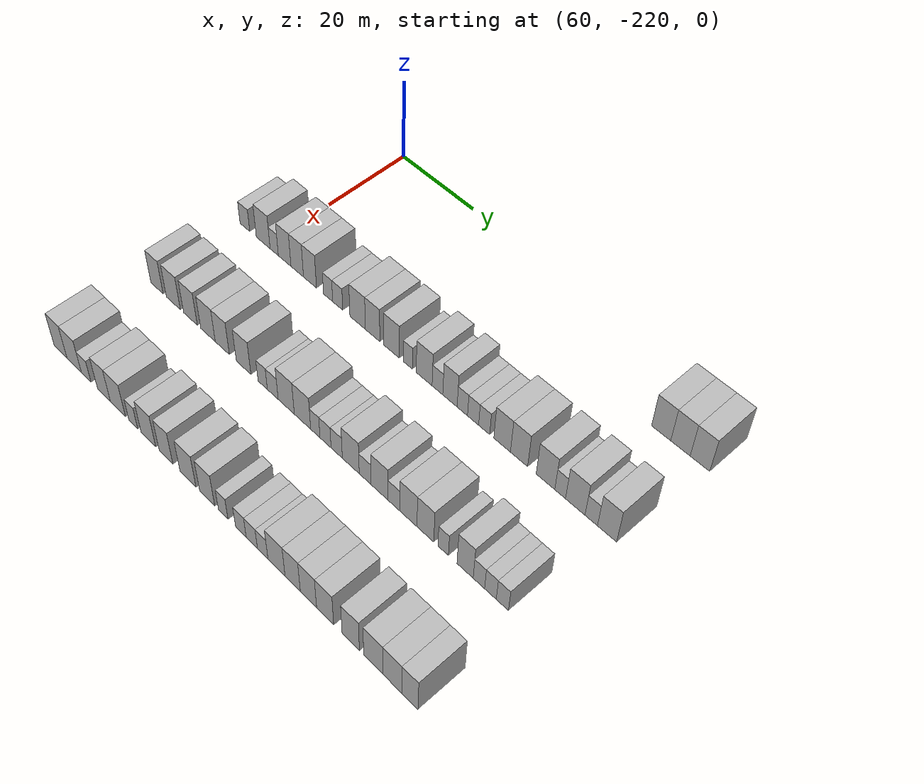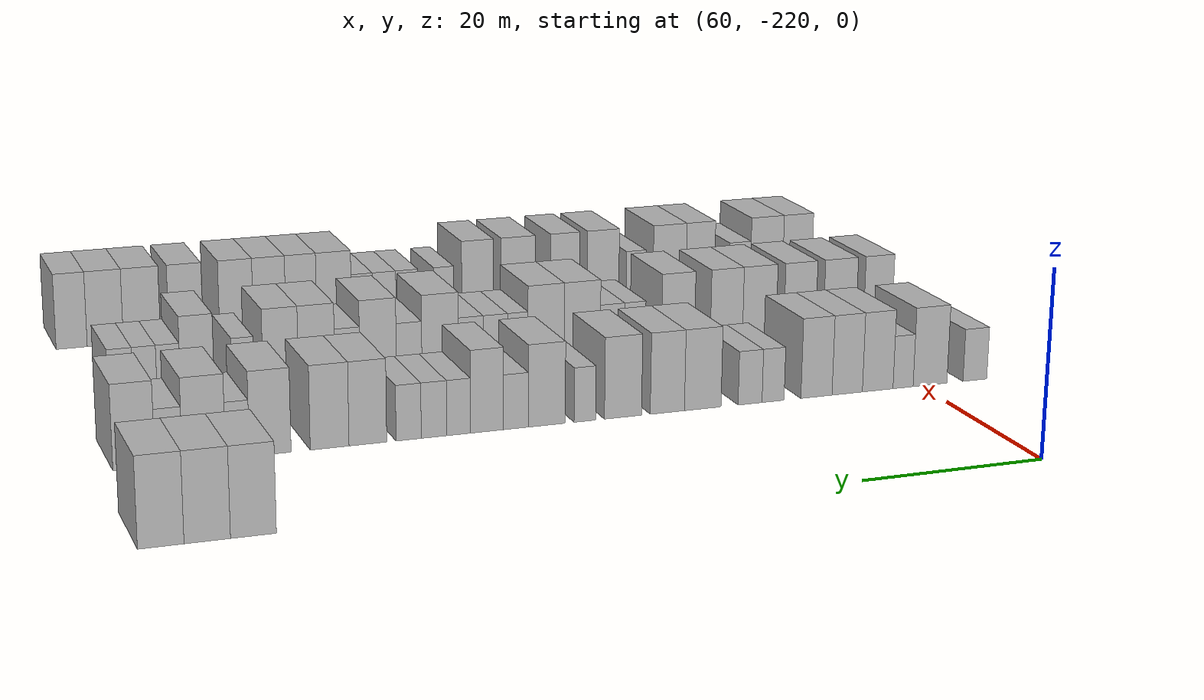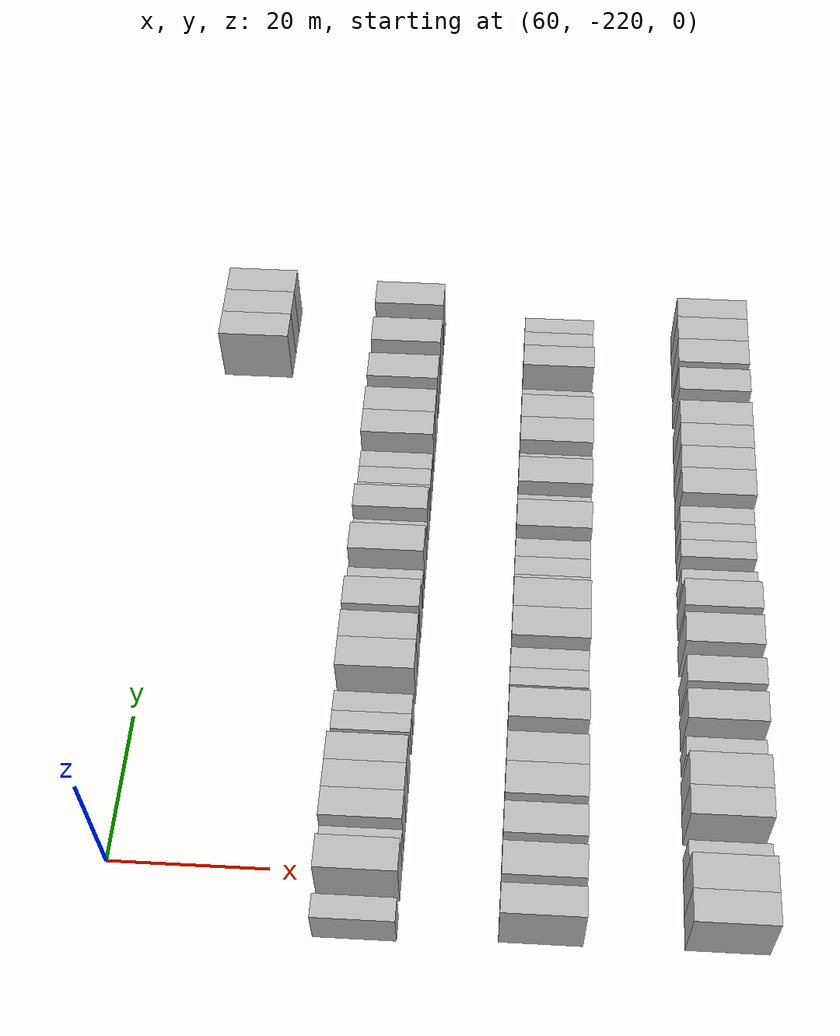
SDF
<sdf version="1.6">
 <world name="default">
  <model name="building_429">
   <static>1</static>
   <pose>69.0000 -139.7375 0 0.000000 0.000000 0.000000</pose>
   <link name="link">
    <pose>0 0 4.50 0 0 0</pose>
    <collision name="collision"><geometry><box><size>10.0000 4.3374 9.0000</size></box></geometry></collision>
    <visual name="visual">
     <cast_shadows>0</cast_shadows>
     <geometry><box><size>10.0000 4.3374 9.0000</size></box></geometry>
     <material>
      <script>
       <uri>model://HANNAS_wall/materials/scripts</uri>
       <uri>model://HANNAS_wall/materials/textures</uri>
       <name>vrc/HANNAS_wall</name>
      </script>
     </material>
    </visual>
   </link>
  </model>
  <model name="building_430">
   <static>1</static>
   <pose>69.0000 -135.4004 0 0.000000 0.000000 0.000000</pose>
   <link name="link">
    <pose>0 0 4.50 0 0 0</pose>
    <collision name="collision"><geometry><box><size>10.0000 4.3367 9.0000</size></box></geometry></collision>
    <visual name="visual">
     <cast_shadows>0</cast_shadows>
     <geometry><box><size>10.0000 4.3367 9.0000</size></box></geometry>
     <material>
      <script>
       <uri>model://HANNAS_wall/materials/scripts</uri>
       <uri>model://HANNAS_wall/materials/textures</uri>
       <name>vrc/HANNAS_wall</name>
      </script>
     </material>
    </visual>
   </link>
  </model>
  <model name="building_431">
   <static>1</static>
   <pose>69.0000 -131.0798 0 0.000000 0.000000 0.000000</pose>
   <link name="link">
    <pose>0 0 4.50 0 0 0</pose>
    <collision name="collision"><geometry><box><size>10.0000 4.3046 9.0000</size></box></geometry></collision>
    <visual name="visual">
     <cast_shadows>0</cast_shadows>
     <geometry><box><size>10.0000 4.3046 9.0000</size></box></geometry>
     <material>
      <script>
       <uri>model://HANNAS_wall/materials/scripts</uri>
       <uri>model://HANNAS_wall/materials/textures</uri>
       <name>vrc/HANNAS_wall</name>
      </script>
     </material>
    </visual>
   </link>
  </model>
  <model name="building_600">
   <static>1</static>
   <pose>91.0000 -226.6868 0 0.000000 0.000000 0.000000</pose>
   <link name="link">
    <pose>0 0 3.00 0 0 0</pose>
    <collision name="collision"><geometry><box><size>10.0000 2.9673 6.0000</size></box></geometry></collision>
    <visual name="visual">
     <cast_shadows>0</cast_shadows>
     <geometry><box><size>10.0000 2.9673 6.0000</size></box></geometry>
     <material>
      <script>
       <uri>model://HANNAS_wall/materials/scripts</uri>
       <uri>model://HANNAS_wall/materials/textures</uri>
       <name>vrc/HANNAS_wall</name>
      </script>
     </material>
    </visual>
   </link>
  </model>
  <model name="building_601">
   <static>1</static>
   <pose>91.0000 -221.1215 0 0.000000 0.000000 0.000000</pose>
   <link name="link">
    <pose>0 0 4.50 0 0 0</pose>
    <collision name="collision"><geometry><box><size>10.0000 4.1633 9.0000</size></box></geometry></collision>
    <visual name="visual">
     <cast_shadows>0</cast_shadows>
     <geometry><box><size>10.0000 4.1633 9.0000</size></box></geometry>
     <material>
      <script>
       <uri>model://HANNAS_wall/materials/scripts</uri>
       <uri>model://HANNAS_wall/materials/textures</uri>
       <name>vrc/HANNAS_wall</name>
      </script>
     </material>
    </visual>
   </link>
  </model>
  <model name="building_602">
   <static>1</static>
   <pose>91.0000 -217.8086 0 0.000000 0.000000 0.000000</pose>
   <link name="link">
    <pose>0 0 3.00 0 0 0</pose>
    <collision name="collision"><geometry><box><size>10.0000 2.4625 6.0000</size></box></geometry></collision>
    <visual name="visual">
     <cast_shadows>0</cast_shadows>
     <geometry><box><size>10.0000 2.4625 6.0000</size></box></geometry>
     <material>
      <script>
       <uri>model://HANNAS_wall/materials/scripts</uri>
       <uri>model://HANNAS_wall/materials/textures</uri>
       <name>vrc/HANNAS_wall</name>
      </script>
     </material>
    </visual>
   </link>
  </model>
  <model name="building_603">
   <static>1</static>
   <pose>91.0000 -214.7157 0 0.000000 0.000000 0.000000</pose>
   <link name="link">
    <pose>0 0 4.50 0 0 0</pose>
    <collision name="collision"><geometry><box><size>10.0000 3.7232 9.0000</size></box></geometry></collision>
    <visual name="visual">
     <cast_shadows>0</cast_shadows>
     <geometry><box><size>10.0000 3.7232 9.0000</size></box></geometry>
     <material>
      <script>
       <uri>model://HANNAS_wall/materials/scripts</uri>
       <uri>model://HANNAS_wall/materials/textures</uri>
       <name>vrc/HANNAS_wall</name>
      </script>
     </material>
    </visual>
   </link>
  </model>
  <model name="building_604">
   <static>1</static>
   <pose>91.0000 -211.0231 0 0.000000 0.000000 0.000000</pose>
   <link name="link">
    <pose>0 0 4.50 0 0 0</pose>
    <collision name="collision"><geometry><box><size>10.0000 3.6621 9.0000</size></box></geometry></collision>
    <visual name="visual">
     <cast_shadows>0</cast_shadows>
     <geometry><box><size>10.0000 3.6621 9.0000</size></box></geometry>
     <material>
      <script>
       <uri>model://HANNAS_wall/materials/scripts</uri>
       <uri>model://HANNAS_wall/materials/textures</uri>
       <name>vrc/HANNAS_wall</name>
      </script>
     </material>
    </visual>
   </link>
  </model>
  <model name="building_605">
   <static>1</static>
   <pose>91.0000 -207.3272 0 0.000000 0.000000 0.000000</pose>
   <link name="link">
    <pose>0 0 4.50 0 0 0</pose>
    <collision name="collision"><geometry><box><size>10.0000 3.7296 9.0000</size></box></geometry></collision>
    <visual name="visual">
     <cast_shadows>0</cast_shadows>
     <geometry><box><size>10.0000 3.7296 9.0000</size></box></geometry>
     <material>
      <script>
       <uri>model://HANNAS_wall/materials/scripts</uri>
       <uri>model://HANNAS_wall/materials/textures</uri>
       <name>vrc/HANNAS_wall</name>
      </script>
     </material>
    </visual>
   </link>
  </model>
  <model name="building_606">
   <static>1</static>
   <pose>91.0000 -202.1600 0 0.000000 0.000000 0.000000</pose>
   <link name="link">
    <pose>0 0 3.00 0 0 0</pose>
    <collision name="collision"><geometry><box><size>10.0000 2.6048 6.0000</size></box></geometry></collision>
    <visual name="visual">
     <cast_shadows>0</cast_shadows>
     <geometry><box><size>10.0000 2.6048 6.0000</size></box></geometry>
     <material>
      <script>
       <uri>model://HANNAS_wall/materials/scripts</uri>
       <uri>model://HANNAS_wall/materials/textures</uri>
       <name>vrc/HANNAS_wall</name>
      </script>
     </material>
    </visual>
   </link>
  </model>
  <model name="building_607">
   <static>1</static>
   <pose>91.0000 -199.4535 0 0.000000 0.000000 0.000000</pose>
   <link name="link">
    <pose>0 0 3.00 0 0 0</pose>
    <collision name="collision"><geometry><box><size>10.0000 2.8083 6.0000</size></box></geometry></collision>
    <visual name="visual">
     <cast_shadows>0</cast_shadows>
     <geometry><box><size>10.0000 2.8083 6.0000</size></box></geometry>
     <material>
      <script>
       <uri>model://HANNAS_wall/materials/scripts</uri>
       <uri>model://HANNAS_wall/materials/textures</uri>
       <name>vrc/HANNAS_wall</name>
      </script>
     </material>
    </visual>
   </link>
  </model>
  <model name="building_608">
   <static>1</static>
   <pose>91.0000 -193.9268 0 0.000000 0.000000 0.000000</pose>
   <link name="link">
    <pose>0 0 4.50 0 0 0</pose>
    <collision name="collision"><geometry><box><size>10.0000 4.2449 9.0000</size></box></geometry></collision>
    <visual name="visual">
     <cast_shadows>0</cast_shadows>
     <geometry><box><size>10.0000 4.2449 9.0000</size></box></geometry>
     <material>
      <script>
       <uri>model://HANNAS_wall/materials/scripts</uri>
       <uri>model://HANNAS_wall/materials/textures</uri>
       <name>vrc/HANNAS_wall</name>
      </script>
     </material>
    </visual>
   </link>
  </model>
  <model name="building_609">
   <static>1</static>
   <pose>91.0000 -189.8392 0 0.000000 0.000000 0.000000</pose>
   <link name="link">
    <pose>0 0 4.50 0 0 0</pose>
    <collision name="collision"><geometry><box><size>10.0000 3.9305 9.0000</size></box></geometry></collision>
    <visual name="visual">
     <cast_shadows>0</cast_shadows>
     <geometry><box><size>10.0000 3.9305 9.0000</size></box></geometry>
     <material>
      <script>
       <uri>model://HANNAS_wall/materials/scripts</uri>
       <uri>model://HANNAS_wall/materials/textures</uri>
       <name>vrc/HANNAS_wall</name>
      </script>
     </material>
    </visual>
   </link>
  </model>
  <model name="building_610">
   <static>1</static>
   <pose>91.0000 -184.7687 0 0.000000 0.000000 0.000000</pose>
   <link name="link">
    <pose>0 0 4.50 0 0 0</pose>
    <collision name="collision"><geometry><box><size>10.0000 4.2104 9.0000</size></box></geometry></collision>
    <visual name="visual">
     <cast_shadows>0</cast_shadows>
     <geometry><box><size>10.0000 4.2104 9.0000</size></box></geometry>
     <material>
      <script>
       <uri>model://HANNAS_wall/materials/scripts</uri>
       <uri>model://HANNAS_wall/materials/textures</uri>
       <name>vrc/HANNAS_wall</name>
      </script>
     </material>
    </visual>
   </link>
  </model>
  <model name="building_611">
   <static>1</static>
   <pose>91.0000 -180.4513 0 0.000000 0.000000 0.000000</pose>
   <link name="link">
    <pose>0 0 3.00 0 0 0</pose>
    <collision name="collision"><geometry><box><size>10.0000 2.4243 6.0000</size></box></geometry></collision>
    <visual name="visual">
     <cast_shadows>0</cast_shadows>
     <geometry><box><size>10.0000 2.4243 6.0000</size></box></geometry>
     <material>
      <script>
       <uri>model://HANNAS_wall/materials/scripts</uri>
       <uri>model://HANNAS_wall/materials/textures</uri>
       <name>vrc/HANNAS_wall</name>
      </script>
     </material>
    </visual>
   </link>
  </model>
  <model name="building_612">
   <static>1</static>
   <pose>91.0000 -176.1852 0 0.000000 0.000000 0.000000</pose>
   <link name="link">
    <pose>0 0 4.50 0 0 0</pose>
    <collision name="collision"><geometry><box><size>10.0000 4.1080 9.0000</size></box></geometry></collision>
    <visual name="visual">
     <cast_shadows>0</cast_shadows>
     <geometry><box><size>10.0000 4.1080 9.0000</size></box></geometry>
     <material>
      <script>
       <uri>model://HANNAS_wall/materials/scripts</uri>
       <uri>model://HANNAS_wall/materials/textures</uri>
       <name>vrc/HANNAS_wall</name>
      </script>
     </material>
    </visual>
   </link>
  </model>
  <model name="building_613">
   <static>1</static>
   <pose>91.0000 -172.7650 0 0.000000 0.000000 0.000000</pose>
   <link name="link">
    <pose>0 0 3.00 0 0 0</pose>
    <collision name="collision"><geometry><box><size>10.0000 2.7324 6.0000</size></box></geometry></collision>
    <visual name="visual">
     <cast_shadows>0</cast_shadows>
     <geometry><box><size>10.0000 2.7324 6.0000</size></box></geometry>
     <material>
      <script>
       <uri>model://HANNAS_wall/materials/scripts</uri>
       <uri>model://HANNAS_wall/materials/textures</uri>
       <name>vrc/HANNAS_wall</name>
      </script>
     </material>
    </visual>
   </link>
  </model>
  <model name="building_614">
   <static>1</static>
   <pose>91.0000 -169.5851 0 0.000000 0.000000 0.000000</pose>
   <link name="link">
    <pose>0 0 4.50 0 0 0</pose>
    <collision name="collision"><geometry><box><size>10.0000 3.6273 9.0000</size></box></geometry></collision>
    <visual name="visual">
     <cast_shadows>0</cast_shadows>
     <geometry><box><size>10.0000 3.6273 9.0000</size></box></geometry>
     <material>
      <script>
       <uri>model://HANNAS_wall/materials/scripts</uri>
       <uri>model://HANNAS_wall/materials/textures</uri>
       <name>vrc/HANNAS_wall</name>
      </script>
     </material>
    </visual>
   </link>
  </model>
  <model name="building_615">
   <static>1</static>
   <pose>91.0000 -166.4772 0 0.000000 0.000000 0.000000</pose>
   <link name="link">
    <pose>0 0 3.00 0 0 0</pose>
    <collision name="collision"><geometry><box><size>10.0000 2.5886 6.0000</size></box></geometry></collision>
    <visual name="visual">
     <cast_shadows>0</cast_shadows>
     <geometry><box><size>10.0000 2.5886 6.0000</size></box></geometry>
     <material>
      <script>
       <uri>model://HANNAS_wall/materials/scripts</uri>
       <uri>model://HANNAS_wall/materials/textures</uri>
       <name>vrc/HANNAS_wall</name>
      </script>
     </material>
    </visual>
   </link>
  </model>
  <model name="building_616">
   <static>1</static>
   <pose>91.0000 -163.8055 0 0.000000 0.000000 0.000000</pose>
   <link name="link">
    <pose>0 0 3.00 0 0 0</pose>
    <collision name="collision"><geometry><box><size>10.0000 2.7547 6.0000</size></box></geometry></collision>
    <visual name="visual">
     <cast_shadows>0</cast_shadows>
     <geometry><box><size>10.0000 2.7547 6.0000</size></box></geometry>
     <material>
      <script>
       <uri>model://HANNAS_wall/materials/scripts</uri>
       <uri>model://HANNAS_wall/materials/textures</uri>
       <name>vrc/HANNAS_wall</name>
      </script>
     </material>
    </visual>
   </link>
  </model>
  <model name="building_617">
   <static>1</static>
   <pose>91.0000 -161.0764 0 0.000000 0.000000 0.000000</pose>
   <link name="link">
    <pose>0 0 3.00 0 0 0</pose>
    <collision name="collision"><geometry><box><size>10.0000 2.7036 6.0000</size></box></geometry></collision>
    <visual name="visual">
     <cast_shadows>0</cast_shadows>
     <geometry><box><size>10.0000 2.7036 6.0000</size></box></geometry>
     <material>
      <script>
       <uri>model://HANNAS_wall/materials/scripts</uri>
       <uri>model://HANNAS_wall/materials/textures</uri>
       <name>vrc/HANNAS_wall</name>
      </script>
     </material>
    </visual>
   </link>
  </model>
  <model name="building_618">
   <static>1</static>
   <pose>91.0000 -156.7187 0 0.000000 0.000000 0.000000</pose>
   <link name="link">
    <pose>0 0 4.50 0 0 0</pose>
    <collision name="collision"><geometry><box><size>10.0000 4.0118 9.0000</size></box></geometry></collision>
    <visual name="visual">
     <cast_shadows>0</cast_shadows>
     <geometry><box><size>10.0000 4.0118 9.0000</size></box></geometry>
     <material>
      <script>
       <uri>model://HANNAS_wall/materials/scripts</uri>
       <uri>model://HANNAS_wall/materials/textures</uri>
       <name>vrc/HANNAS_wall</name>
      </script>
     </material>
    </visual>
   </link>
  </model>
  <model name="building_619">
   <static>1</static>
   <pose>91.0000 -152.6695 0 0.000000 0.000000 0.000000</pose>
   <link name="link">
    <pose>0 0 4.50 0 0 0</pose>
    <collision name="collision"><geometry><box><size>10.0000 4.0865 9.0000</size></box></geometry></collision>
    <visual name="visual">
     <cast_shadows>0</cast_shadows>
     <geometry><box><size>10.0000 4.0865 9.0000</size></box></geometry>
     <material>
      <script>
       <uri>model://HANNAS_wall/materials/scripts</uri>
       <uri>model://HANNAS_wall/materials/textures</uri>
       <name>vrc/HANNAS_wall</name>
      </script>
     </material>
    </visual>
   </link>
  </model>
  <model name="building_620">
   <static>1</static>
   <pose>91.0000 -146.4672 0 0.000000 0.000000 0.000000</pose>
   <link name="link">
    <pose>0 0 4.50 0 0 0</pose>
    <collision name="collision"><geometry><box><size>10.0000 4.3181 9.0000</size></box></geometry></collision>
    <visual name="visual">
     <cast_shadows>0</cast_shadows>
     <geometry><box><size>10.0000 4.3181 9.0000</size></box></geometry>
     <material>
      <script>
       <uri>model://HANNAS_wall/materials/scripts</uri>
       <uri>model://HANNAS_wall/materials/textures</uri>
       <name>vrc/HANNAS_wall</name>
      </script>
     </material>
    </visual>
   </link>
  </model>
  <model name="building_621">
   <static>1</static>
   <pose>91.0000 -143.0779 0 0.000000 0.000000 0.000000</pose>
   <link name="link">
    <pose>0 0 3.00 0 0 0</pose>
    <collision name="collision"><geometry><box><size>10.0000 2.4607 6.0000</size></box></geometry></collision>
    <visual name="visual">
     <cast_shadows>0</cast_shadows>
     <geometry><box><size>10.0000 2.4607 6.0000</size></box></geometry>
     <material>
      <script>
       <uri>model://HANNAS_wall/materials/scripts</uri>
       <uri>model://HANNAS_wall/materials/textures</uri>
       <name>vrc/HANNAS_wall</name>
      </script>
     </material>
    </visual>
   </link>
  </model>
  <model name="building_622">
   <static>1</static>
   <pose>91.0000 -139.6429 0 0.000000 0.000000 0.000000</pose>
   <link name="link">
    <pose>0 0 4.50 0 0 0</pose>
    <collision name="collision"><geometry><box><size>10.0000 4.4092 9.0000</size></box></geometry></collision>
    <visual name="visual">
     <cast_shadows>0</cast_shadows>
     <geometry><box><size>10.0000 4.4092 9.0000</size></box></geometry>
     <material>
      <script>
       <uri>model://HANNAS_wall/materials/scripts</uri>
       <uri>model://HANNAS_wall/materials/textures</uri>
       <name>vrc/HANNAS_wall</name>
      </script>
     </material>
    </visual>
   </link>
  </model>
  <model name="building_623">
   <static>1</static>
   <pose>91.0000 -136.0466 0 0.000000 0.000000 0.000000</pose>
   <link name="link">
    <pose>0 0 3.00 0 0 0</pose>
    <collision name="collision"><geometry><box><size>10.0000 2.7835 6.0000</size></box></geometry></collision>
    <visual name="visual">
     <cast_shadows>0</cast_shadows>
     <geometry><box><size>10.0000 2.7835 6.0000</size></box></geometry>
     <material>
      <script>
       <uri>model://HANNAS_wall/materials/scripts</uri>
       <uri>model://HANNAS_wall/materials/textures</uri>
       <name>vrc/HANNAS_wall</name>
      </script>
     </material>
    </visual>
   </link>
  </model>
  <model name="building_624">
   <static>1</static>
   <pose>91.0000 -132.5418 0 0.000000 0.000000 0.000000</pose>
   <link name="link">
    <pose>0 0 4.50 0 0 0</pose>
    <collision name="collision"><geometry><box><size>10.0000 4.2262 9.0000</size></box></geometry></collision>
    <visual name="visual">
     <cast_shadows>0</cast_shadows>
     <geometry><box><size>10.0000 4.2262 9.0000</size></box></geometry>
     <material>
      <script>
       <uri>model://HANNAS_wall/materials/scripts</uri>
       <uri>model://HANNAS_wall/materials/textures</uri>
       <name>vrc/HANNAS_wall</name>
      </script>
     </material>
    </visual>
   </link>
  </model>
  <model name="building_792">
   <static>1</static>
   <pose>113.0000 -225.7185 0 0.000000 0.000000 0.000000</pose>
   <link name="link">
    <pose>0 0 4.50 0 0 0</pose>
    <collision name="collision"><geometry><box><size>10.0000 3.7616 9.0000</size></box></geometry></collision>
    <visual name="visual">
     <cast_shadows>0</cast_shadows>
     <geometry><box><size>10.0000 3.7616 9.0000</size></box></geometry>
     <material>
      <script>
       <uri>model://HANNAS_wall/materials/scripts</uri>
       <uri>model://HANNAS_wall/materials/textures</uri>
       <name>vrc/HANNAS_wall</name>
      </script>
     </material>
    </visual>
   </link>
  </model>
  <model name="building_793">
   <static>1</static>
   <pose>113.0000 -220.7083 0 0.000000 0.000000 0.000000</pose>
   <link name="link">
    <pose>0 0 4.50 0 0 0</pose>
    <collision name="collision"><geometry><box><size>10.0000 4.2590 9.0000</size></box></geometry></collision>
    <visual name="visual">
     <cast_shadows>0</cast_shadows>
     <geometry><box><size>10.0000 4.2590 9.0000</size></box></geometry>
     <material>
      <script>
       <uri>model://HANNAS_wall/materials/scripts</uri>
       <uri>model://HANNAS_wall/materials/textures</uri>
       <name>vrc/HANNAS_wall</name>
      </script>
     </material>
    </visual>
   </link>
  </model>
  <model name="building_794">
   <static>1</static>
   <pose>113.0000 -215.5234 0 0.000000 0.000000 0.000000</pose>
   <link name="link">
    <pose>0 0 4.50 0 0 0</pose>
    <collision name="collision"><geometry><box><size>10.0000 4.1109 9.0000</size></box></geometry></collision>
    <visual name="visual">
     <cast_shadows>0</cast_shadows>
     <geometry><box><size>10.0000 4.1109 9.0000</size></box></geometry>
     <material>
      <script>
       <uri>model://HANNAS_wall/materials/scripts</uri>
       <uri>model://HANNAS_wall/materials/textures</uri>
       <name>vrc/HANNAS_wall</name>
      </script>
     </material>
    </visual>
   </link>
  </model>
  <model name="building_795">
   <static>1</static>
   <pose>113.0000 -210.3264 0 0.000000 0.000000 0.000000</pose>
   <link name="link">
    <pose>0 0 4.50 0 0 0</pose>
    <collision name="collision"><geometry><box><size>10.0000 4.2831 9.0000</size></box></geometry></collision>
    <visual name="visual">
     <cast_shadows>0</cast_shadows>
     <geometry><box><size>10.0000 4.2831 9.0000</size></box></geometry>
     <material>
      <script>
       <uri>model://HANNAS_wall/materials/scripts</uri>
       <uri>model://HANNAS_wall/materials/textures</uri>
       <name>vrc/HANNAS_wall</name>
      </script>
     </material>
    </visual>
   </link>
  </model>
  <model name="building_796">
   <static>1</static>
   <pose>113.0000 -206.1448 0 0.000000 0.000000 0.000000</pose>
   <link name="link">
    <pose>0 0 4.50 0 0 0</pose>
    <collision name="collision"><geometry><box><size>10.0000 4.0799 9.0000</size></box></geometry></collision>
    <visual name="visual">
     <cast_shadows>0</cast_shadows>
     <geometry><box><size>10.0000 4.0799 9.0000</size></box></geometry>
     <material>
      <script>
       <uri>model://HANNAS_wall/materials/scripts</uri>
       <uri>model://HANNAS_wall/materials/textures</uri>
       <name>vrc/HANNAS_wall</name>
      </script>
     </material>
    </visual>
   </link>
  </model>
  <model name="building_797">
   <static>1</static>
   <pose>113.0000 -200.0342 0 0.000000 0.000000 0.000000</pose>
   <link name="link">
    <pose>0 0 4.50 0 0 0</pose>
    <collision name="collision"><geometry><box><size>10.0000 4.1412 9.0000</size></box></geometry></collision>
    <visual name="visual">
     <cast_shadows>0</cast_shadows>
     <geometry><box><size>10.0000 4.1412 9.0000</size></box></geometry>
     <material>
      <script>
       <uri>model://HANNAS_wall/materials/scripts</uri>
       <uri>model://HANNAS_wall/materials/textures</uri>
       <name>vrc/HANNAS_wall</name>
      </script>
     </material>
    </visual>
   </link>
  </model>
  <model name="building_798">
   <static>1</static>
   <pose>113.0000 -194.6703 0 0.000000 0.000000 0.000000</pose>
   <link name="link">
    <pose>0 0 3.00 0 0 0</pose>
    <collision name="collision"><geometry><box><size>10.0000 2.5867 6.0000</size></box></geometry></collision>
    <visual name="visual">
     <cast_shadows>0</cast_shadows>
     <geometry><box><size>10.0000 2.5867 6.0000</size></box></geometry>
     <material>
      <script>
       <uri>model://HANNAS_wall/materials/scripts</uri>
       <uri>model://HANNAS_wall/materials/textures</uri>
       <name>vrc/HANNAS_wall</name>
      </script>
     </material>
    </visual>
   </link>
  </model>
  <model name="building_799">
   <static>1</static>
   <pose>113.0000 -191.8861 0 0.000000 0.000000 0.000000</pose>
   <link name="link">
    <pose>0 0 3.00 0 0 0</pose>
    <collision name="collision"><geometry><box><size>10.0000 2.9818 6.0000</size></box></geometry></collision>
    <visual name="visual">
     <cast_shadows>0</cast_shadows>
     <geometry><box><size>10.0000 2.9818 6.0000</size></box></geometry>
     <material>
      <script>
       <uri>model://HANNAS_wall/materials/scripts</uri>
       <uri>model://HANNAS_wall/materials/textures</uri>
       <name>vrc/HANNAS_wall</name>
      </script>
     </material>
    </visual>
   </link>
  </model>
  <model name="building_800">
   <static>1</static>
   <pose>113.0000 -188.1967 0 0.000000 0.000000 0.000000</pose>
   <link name="link">
    <pose>0 0 4.50 0 0 0</pose>
    <collision name="collision"><geometry><box><size>10.0000 4.3970 9.0000</size></box></geometry></collision>
    <visual name="visual">
     <cast_shadows>0</cast_shadows>
     <geometry><box><size>10.0000 4.3970 9.0000</size></box></geometry>
     <material>
      <script>
       <uri>model://HANNAS_wall/materials/scripts</uri>
       <uri>model://HANNAS_wall/materials/textures</uri>
       <name>vrc/HANNAS_wall</name>
      </script>
     </material>
    </visual>
   </link>
  </model>
  <model name="building_801">
   <static>1</static>
   <pose>113.0000 -183.8077 0 0.000000 0.000000 0.000000</pose>
   <link name="link">
    <pose>0 0 4.50 0 0 0</pose>
    <collision name="collision"><geometry><box><size>10.0000 4.3809 9.0000</size></box></geometry></collision>
    <visual name="visual">
     <cast_shadows>0</cast_shadows>
     <geometry><box><size>10.0000 4.3809 9.0000</size></box></geometry>
     <material>
      <script>
       <uri>model://HANNAS_wall/materials/scripts</uri>
       <uri>model://HANNAS_wall/materials/textures</uri>
       <name>vrc/HANNAS_wall</name>
      </script>
     </material>
    </visual>
   </link>
  </model>
  <model name="building_802">
   <static>1</static>
   <pose>113.0000 -180.3919 0 0.000000 0.000000 0.000000</pose>
   <link name="link">
    <pose>0 0 3.00 0 0 0</pose>
    <collision name="collision"><geometry><box><size>10.0000 2.4507 6.0000</size></box></geometry></collision>
    <visual name="visual">
     <cast_shadows>0</cast_shadows>
     <geometry><box><size>10.0000 2.4507 6.0000</size></box></geometry>
     <material>
      <script>
       <uri>model://HANNAS_wall/materials/scripts</uri>
       <uri>model://HANNAS_wall/materials/textures</uri>
       <name>vrc/HANNAS_wall</name>
      </script>
     </material>
    </visual>
   </link>
  </model>
  <model name="building_803">
   <static>1</static>
   <pose>113.0000 -177.7183 0 0.000000 0.000000 0.000000</pose>
   <link name="link">
    <pose>0 0 3.00 0 0 0</pose>
    <collision name="collision"><geometry><box><size>10.0000 2.8965 6.0000</size></box></geometry></collision>
    <visual name="visual">
     <cast_shadows>0</cast_shadows>
     <geometry><box><size>10.0000 2.8965 6.0000</size></box></geometry>
     <material>
      <script>
       <uri>model://HANNAS_wall/materials/scripts</uri>
       <uri>model://HANNAS_wall/materials/textures</uri>
       <name>vrc/HANNAS_wall</name>
      </script>
     </material>
    </visual>
   </link>
  </model>
  <model name="building_804">
   <static>1</static>
   <pose>113.0000 -174.8090 0 0.000000 0.000000 0.000000</pose>
   <link name="link">
    <pose>0 0 3.00 0 0 0</pose>
    <collision name="collision"><geometry><box><size>10.0000 2.9220 6.0000</size></box></geometry></collision>
    <visual name="visual">
     <cast_shadows>0</cast_shadows>
     <geometry><box><size>10.0000 2.9220 6.0000</size></box></geometry>
     <material>
      <script>
       <uri>model://HANNAS_wall/materials/scripts</uri>
       <uri>model://HANNAS_wall/materials/textures</uri>
       <name>vrc/HANNAS_wall</name>
      </script>
     </material>
    </visual>
   </link>
  </model>
  <model name="building_805">
   <static>1</static>
   <pose>113.0000 -171.1893 0 0.000000 0.000000 0.000000</pose>
   <link name="link">
    <pose>0 0 4.50 0 0 0</pose>
    <collision name="collision"><geometry><box><size>10.0000 4.3174 9.0000</size></box></geometry></collision>
    <visual name="visual">
     <cast_shadows>0</cast_shadows>
     <geometry><box><size>10.0000 4.3174 9.0000</size></box></geometry>
     <material>
      <script>
       <uri>model://HANNAS_wall/materials/scripts</uri>
       <uri>model://HANNAS_wall/materials/textures</uri>
       <name>vrc/HANNAS_wall</name>
      </script>
     </material>
    </visual>
   </link>
  </model>
  <model name="building_806">
   <static>1</static>
   <pose>113.0000 -167.5395 0 0.000000 0.000000 0.000000</pose>
   <link name="link">
    <pose>0 0 3.00 0 0 0</pose>
    <collision name="collision"><geometry><box><size>10.0000 2.9822 6.0000</size></box></geometry></collision>
    <visual name="visual">
     <cast_shadows>0</cast_shadows>
     <geometry><box><size>10.0000 2.9822 6.0000</size></box></geometry>
     <material>
      <script>
       <uri>model://HANNAS_wall/materials/scripts</uri>
       <uri>model://HANNAS_wall/materials/textures</uri>
       <name>vrc/HANNAS_wall</name>
      </script>
     </material>
    </visual>
   </link>
  </model>
  <model name="building_807">
   <static>1</static>
   <pose>113.0000 -163.9364 0 0.000000 0.000000 0.000000</pose>
   <link name="link">
    <pose>0 0 4.50 0 0 0</pose>
    <collision name="collision"><geometry><box><size>10.0000 4.2242 9.0000</size></box></geometry></collision>
    <visual name="visual">
     <cast_shadows>0</cast_shadows>
     <geometry><box><size>10.0000 4.2242 9.0000</size></box></geometry>
     <material>
      <script>
       <uri>model://HANNAS_wall/materials/scripts</uri>
       <uri>model://HANNAS_wall/materials/textures</uri>
       <name>vrc/HANNAS_wall</name>
      </script>
     </material>
    </visual>
   </link>
  </model>
  <model name="building_808">
   <static>1</static>
   <pose>113.0000 -160.3877 0 0.000000 0.000000 0.000000</pose>
   <link name="link">
    <pose>0 0 3.00 0 0 0</pose>
    <collision name="collision"><geometry><box><size>10.0000 2.8733 6.0000</size></box></geometry></collision>
    <visual name="visual">
     <cast_shadows>0</cast_shadows>
     <geometry><box><size>10.0000 2.8733 6.0000</size></box></geometry>
     <material>
      <script>
       <uri>model://HANNAS_wall/materials/scripts</uri>
       <uri>model://HANNAS_wall/materials/textures</uri>
       <name>vrc/HANNAS_wall</name>
      </script>
     </material>
    </visual>
   </link>
  </model>
  <model name="building_809">
   <static>1</static>
   <pose>113.0000 -156.8790 0 0.000000 0.000000 0.000000</pose>
   <link name="link">
    <pose>0 0 4.50 0 0 0</pose>
    <collision name="collision"><geometry><box><size>10.0000 4.1440 9.0000</size></box></geometry></collision>
    <visual name="visual">
     <cast_shadows>0</cast_shadows>
     <geometry><box><size>10.0000 4.1440 9.0000</size></box></geometry>
     <material>
      <script>
       <uri>model://HANNAS_wall/materials/scripts</uri>
       <uri>model://HANNAS_wall/materials/textures</uri>
       <name>vrc/HANNAS_wall</name>
      </script>
     </material>
    </visual>
   </link>
  </model>
  <model name="building_810">
   <static>1</static>
   <pose>113.0000 -152.8046 0 0.000000 0.000000 0.000000</pose>
   <link name="link">
    <pose>0 0 4.50 0 0 0</pose>
    <collision name="collision"><geometry><box><size>10.0000 4.0048 9.0000</size></box></geometry></collision>
    <visual name="visual">
     <cast_shadows>0</cast_shadows>
     <geometry><box><size>10.0000 4.0048 9.0000</size></box></geometry>
     <material>
      <script>
       <uri>model://HANNAS_wall/materials/scripts</uri>
       <uri>model://HANNAS_wall/materials/textures</uri>
       <name>vrc/HANNAS_wall</name>
      </script>
     </material>
    </visual>
   </link>
  </model>
  <model name="building_811">
   <static>1</static>
   <pose>113.0000 -148.5773 0 0.000000 0.000000 0.000000</pose>
   <link name="link">
    <pose>0 0 3.00 0 0 0</pose>
    <collision name="collision"><geometry><box><size>10.0000 2.4499 6.0000</size></box></geometry></collision>
    <visual name="visual">
     <cast_shadows>0</cast_shadows>
     <geometry><box><size>10.0000 2.4499 6.0000</size></box></geometry>
     <material>
      <script>
       <uri>model://HANNAS_wall/materials/scripts</uri>
       <uri>model://HANNAS_wall/materials/textures</uri>
       <name>vrc/HANNAS_wall</name>
      </script>
     </material>
    </visual>
   </link>
  </model>
  <model name="building_812">
   <static>1</static>
   <pose>113.0000 -143.4862 0 0.000000 0.000000 0.000000</pose>
   <link name="link">
    <pose>0 0 4.50 0 0 0</pose>
    <collision name="collision"><geometry><box><size>10.0000 3.7322 9.0000</size></box></geometry></collision>
    <visual name="visual">
     <cast_shadows>0</cast_shadows>
     <geometry><box><size>10.0000 3.7322 9.0000</size></box></geometry>
     <material>
      <script>
       <uri>model://HANNAS_wall/materials/scripts</uri>
       <uri>model://HANNAS_wall/materials/textures</uri>
       <name>vrc/HANNAS_wall</name>
      </script>
     </material>
    </visual>
   </link>
  </model>
  <model name="building_813">
   <static>1</static>
   <pose>113.0000 -140.3259 0 0.000000 0.000000 0.000000</pose>
   <link name="link">
    <pose>0 0 3.00 0 0 0</pose>
    <collision name="collision"><geometry><box><size>10.0000 2.5885 6.0000</size></box></geometry></collision>
    <visual name="visual">
     <cast_shadows>0</cast_shadows>
     <geometry><box><size>10.0000 2.5885 6.0000</size></box></geometry>
     <material>
      <script>
       <uri>model://HANNAS_wall/materials/scripts</uri>
       <uri>model://HANNAS_wall/materials/textures</uri>
       <name>vrc/HANNAS_wall</name>
      </script>
     </material>
    </visual>
   </link>
  </model>
  <model name="building_814">
   <static>1</static>
   <pose>113.0000 -137.7201 0 0.000000 0.000000 0.000000</pose>
   <link name="link">
    <pose>0 0 3.00 0 0 0</pose>
    <collision name="collision"><geometry><box><size>10.0000 2.6231 6.0000</size></box></geometry></collision>
    <visual name="visual">
     <cast_shadows>0</cast_shadows>
     <geometry><box><size>10.0000 2.6231 6.0000</size></box></geometry>
     <material>
      <script>
       <uri>model://HANNAS_wall/materials/scripts</uri>
       <uri>model://HANNAS_wall/materials/textures</uri>
       <name>vrc/HANNAS_wall</name>
      </script>
     </material>
    </visual>
   </link>
  </model>
  <model name="building_815">
   <static>1</static>
   <pose>113.0000 -135.0566 0 0.000000 0.000000 0.000000</pose>
   <link name="link">
    <pose>0 0 3.00 0 0 0</pose>
    <collision name="collision"><geometry><box><size>10.0000 2.7038 6.0000</size></box></geometry></collision>
    <visual name="visual">
     <cast_shadows>0</cast_shadows>
     <geometry><box><size>10.0000 2.7038 6.0000</size></box></geometry>
     <material>
      <script>
       <uri>model://HANNAS_wall/materials/scripts</uri>
       <uri>model://HANNAS_wall/materials/textures</uri>
       <name>vrc/HANNAS_wall</name>
      </script>
     </material>
    </visual>
   </link>
  </model>
  <model name="building_968">
   <static>1</static>
   <pose>135.0000 -225.3787 0 0.000000 0.000000 0.000000</pose>
   <link name="link">
    <pose>0 0 4.50 0 0 0</pose>
    <collision name="collision"><geometry><box><size>10.0000 4.0548 9.0000</size></box></geometry></collision>
    <visual name="visual">
     <cast_shadows>0</cast_shadows>
     <geometry><box><size>10.0000 4.0548 9.0000</size></box></geometry>
     <material>
      <script>
       <uri>model://HANNAS_wall/materials/scripts</uri>
       <uri>model://HANNAS_wall/materials/textures</uri>
       <name>vrc/HANNAS_wall</name>
      </script>
     </material>
    </visual>
   </link>
  </model>
  <model name="building_969">
   <static>1</static>
   <pose>135.0000 -221.1164 0 0.000000 0.000000 0.000000</pose>
   <link name="link">
    <pose>0 0 4.50 0 0 0</pose>
    <collision name="collision"><geometry><box><size>10.0000 4.4698 9.0000</size></box></geometry></collision>
    <visual name="visual">
     <cast_shadows>0</cast_shadows>
     <geometry><box><size>10.0000 4.4698 9.0000</size></box></geometry>
     <material>
      <script>
       <uri>model://HANNAS_wall/materials/scripts</uri>
       <uri>model://HANNAS_wall/materials/textures</uri>
       <name>vrc/HANNAS_wall</name>
      </script>
     </material>
    </visual>
   </link>
  </model>
  <model name="building_970">
   <static>1</static>
   <pose>135.0000 -217.4210 0 0.000000 0.000000 0.000000</pose>
   <link name="link">
    <pose>0 0 3.00 0 0 0</pose>
    <collision name="collision"><geometry><box><size>10.0000 2.9209 6.0000</size></box></geometry></collision>
    <visual name="visual">
     <cast_shadows>0</cast_shadows>
     <geometry><box><size>10.0000 2.9209 6.0000</size></box></geometry>
     <material>
      <script>
       <uri>model://HANNAS_wall/materials/scripts</uri>
       <uri>model://HANNAS_wall/materials/textures</uri>
       <name>vrc/HANNAS_wall</name>
      </script>
     </material>
    </visual>
   </link>
  </model>
  <model name="building_971">
   <static>1</static>
   <pose>135.0000 -212.0305 0 0.000000 0.000000 0.000000</pose>
   <link name="link">
    <pose>0 0 4.50 0 0 0</pose>
    <collision name="collision"><geometry><box><size>10.0000 3.8602 9.0000</size></box></geometry></collision>
    <visual name="visual">
     <cast_shadows>0</cast_shadows>
     <geometry><box><size>10.0000 3.8602 9.0000</size></box></geometry>
     <material>
      <script>
       <uri>model://HANNAS_wall/materials/scripts</uri>
       <uri>model://HANNAS_wall/materials/textures</uri>
       <name>vrc/HANNAS_wall</name>
      </script>
     </material>
    </visual>
   </link>
  </model>
  <model name="building_972">
   <static>1</static>
   <pose>135.0000 -207.8739 0 0.000000 0.000000 0.000000</pose>
   <link name="link">
    <pose>0 0 4.50 0 0 0</pose>
    <collision name="collision"><geometry><box><size>10.0000 4.4529 9.0000</size></box></geometry></collision>
    <visual name="visual">
     <cast_shadows>0</cast_shadows>
     <geometry><box><size>10.0000 4.4529 9.0000</size></box></geometry>
     <material>
      <script>
       <uri>model://HANNAS_wall/materials/scripts</uri>
       <uri>model://HANNAS_wall/materials/textures</uri>
       <name>vrc/HANNAS_wall</name>
      </script>
     </material>
    </visual>
   </link>
  </model>
  <model name="building_973">
   <static>1</static>
   <pose>135.0000 -203.3634 0 0.000000 0.000000 0.000000</pose>
   <link name="link">
    <pose>0 0 3.00 0 0 0</pose>
    <collision name="collision"><geometry><box><size>10.0000 2.5680 6.0000</size></box></geometry></collision>
    <visual name="visual">
     <cast_shadows>0</cast_shadows>
     <geometry><box><size>10.0000 2.5680 6.0000</size></box></geometry>
     <material>
      <script>
       <uri>model://HANNAS_wall/materials/scripts</uri>
       <uri>model://HANNAS_wall/materials/textures</uri>
       <name>vrc/HANNAS_wall</name>
      </script>
     </material>
    </visual>
   </link>
  </model>
  <model name="building_974">
   <static>1</static>
   <pose>135.0000 -198.9884 0 0.000000 0.000000 0.000000</pose>
   <link name="link">
    <pose>0 0 4.50 0 0 0</pose>
    <collision name="collision"><geometry><box><size>10.0000 4.1819 9.0000</size></box></geometry></collision>
    <visual name="visual">
     <cast_shadows>0</cast_shadows>
     <geometry><box><size>10.0000 4.1819 9.0000</size></box></geometry>
     <material>
      <script>
       <uri>model://HANNAS_wall/materials/scripts</uri>
       <uri>model://HANNAS_wall/materials/textures</uri>
       <name>vrc/HANNAS_wall</name>
      </script>
     </material>
    </visual>
   </link>
  </model>
  <model name="building_975">
   <static>1</static>
   <pose>135.0000 -193.9870 0 0.000000 0.000000 0.000000</pose>
   <link name="link">
    <pose>0 0 4.50 0 0 0</pose>
    <collision name="collision"><geometry><box><size>10.0000 3.8208 9.0000</size></box></geometry></collision>
    <visual name="visual">
     <cast_shadows>0</cast_shadows>
     <geometry><box><size>10.0000 3.8208 9.0000</size></box></geometry>
     <material>
      <script>
       <uri>model://HANNAS_wall/materials/scripts</uri>
       <uri>model://HANNAS_wall/materials/textures</uri>
       <name>vrc/HANNAS_wall</name>
      </script>
     </material>
    </visual>
   </link>
  </model>
  <model name="building_976">
   <static>1</static>
   <pose>135.0000 -187.8769 0 0.000000 0.000000 0.000000</pose>
   <link name="link">
    <pose>0 0 4.50 0 0 0</pose>
    <collision name="collision"><geometry><box><size>10.0000 4.3994 9.0000</size></box></geometry></collision>
    <visual name="visual">
     <cast_shadows>0</cast_shadows>
     <geometry><box><size>10.0000 4.3994 9.0000</size></box></geometry>
     <material>
      <script>
       <uri>model://HANNAS_wall/materials/scripts</uri>
       <uri>model://HANNAS_wall/materials/textures</uri>
       <name>vrc/HANNAS_wall</name>
      </script>
     </material>
    </visual>
   </link>
  </model>
  <model name="building_977">
   <static>1</static>
   <pose>135.0000 -182.6466 0 0.000000 0.000000 0.000000</pose>
   <link name="link">
    <pose>0 0 4.50 0 0 0</pose>
    <collision name="collision"><geometry><box><size>10.0000 4.0611 9.0000</size></box></geometry></collision>
    <visual name="visual">
     <cast_shadows>0</cast_shadows>
     <geometry><box><size>10.0000 4.0611 9.0000</size></box></geometry>
     <material>
      <script>
       <uri>model://HANNAS_wall/materials/scripts</uri>
       <uri>model://HANNAS_wall/materials/textures</uri>
       <name>vrc/HANNAS_wall</name>
      </script>
     </material>
    </visual>
   </link>
  </model>
  <model name="building_978">
   <static>1</static>
   <pose>135.0000 -178.3508 0 0.000000 0.000000 0.000000</pose>
   <link name="link">
    <pose>0 0 3.00 0 0 0</pose>
    <collision name="collision"><geometry><box><size>10.0000 2.5306 6.0000</size></box></geometry></collision>
    <visual name="visual">
     <cast_shadows>0</cast_shadows>
     <geometry><box><size>10.0000 2.5306 6.0000</size></box></geometry>
     <material>
      <script>
       <uri>model://HANNAS_wall/materials/scripts</uri>
       <uri>model://HANNAS_wall/materials/textures</uri>
       <name>vrc/HANNAS_wall</name>
      </script>
     </material>
    </visual>
   </link>
  </model>
  <model name="building_979">
   <static>1</static>
   <pose>135.0000 -173.6936 0 0.000000 0.000000 0.000000</pose>
   <link name="link">
    <pose>0 0 3.00 0 0 0</pose>
    <collision name="collision"><geometry><box><size>10.0000 2.7836 6.0000</size></box></geometry></collision>
    <visual name="visual">
     <cast_shadows>0</cast_shadows>
     <geometry><box><size>10.0000 2.7836 6.0000</size></box></geometry>
     <material>
      <script>
       <uri>model://HANNAS_wall/materials/scripts</uri>
       <uri>model://HANNAS_wall/materials/textures</uri>
       <name>vrc/HANNAS_wall</name>
      </script>
     </material>
    </visual>
   </link>
  </model>
  <model name="building_980">
   <static>1</static>
   <pose>135.0000 -170.8479 0 0.000000 0.000000 0.000000</pose>
   <link name="link">
    <pose>0 0 3.00 0 0 0</pose>
    <collision name="collision"><geometry><box><size>10.0000 2.9078 6.0000</size></box></geometry></collision>
    <visual name="visual">
     <cast_shadows>0</cast_shadows>
     <geometry><box><size>10.0000 2.9078 6.0000</size></box></geometry>
     <material>
      <script>
       <uri>model://HANNAS_wall/materials/scripts</uri>
       <uri>model://HANNAS_wall/materials/textures</uri>
       <name>vrc/HANNAS_wall</name>
      </script>
     </material>
    </visual>
   </link>
  </model>
  <model name="building_981">
   <static>1</static>
   <pose>135.0000 -168.0625 0 0.000000 0.000000 0.000000</pose>
   <link name="link">
    <pose>0 0 3.00 0 0 0</pose>
    <collision name="collision"><geometry><box><size>10.0000 2.6631 6.0000</size></box></geometry></collision>
    <visual name="visual">
     <cast_shadows>0</cast_shadows>
     <geometry><box><size>10.0000 2.6631 6.0000</size></box></geometry>
     <material>
      <script>
       <uri>model://HANNAS_wall/materials/scripts</uri>
       <uri>model://HANNAS_wall/materials/textures</uri>
       <name>vrc/HANNAS_wall</name>
      </script>
     </material>
    </visual>
   </link>
  </model>
  <model name="building_982">
   <static>1</static>
   <pose>135.0000 -164.5797 0 0.000000 0.000000 0.000000</pose>
   <link name="link">
    <pose>0 0 4.50 0 0 0</pose>
    <collision name="collision"><geometry><box><size>10.0000 4.3025 9.0000</size></box></geometry></collision>
    <visual name="visual">
     <cast_shadows>0</cast_shadows>
     <geometry><box><size>10.0000 4.3025 9.0000</size></box></geometry>
     <material>
      <script>
       <uri>model://HANNAS_wall/materials/scripts</uri>
       <uri>model://HANNAS_wall/materials/textures</uri>
       <name>vrc/HANNAS_wall</name>
      </script>
     </material>
    </visual>
   </link>
  </model>
  <model name="building_983">
   <static>1</static>
   <pose>135.0000 -160.5376 0 0.000000 0.000000 0.000000</pose>
   <link name="link">
    <pose>0 0 4.50 0 0 0</pose>
    <collision name="collision"><geometry><box><size>10.0000 3.7817 9.0000</size></box></geometry></collision>
    <visual name="visual">
     <cast_shadows>0</cast_shadows>
     <geometry><box><size>10.0000 3.7817 9.0000</size></box></geometry>
     <material>
      <script>
       <uri>model://HANNAS_wall/materials/scripts</uri>
       <uri>model://HANNAS_wall/materials/textures</uri>
       <name>vrc/HANNAS_wall</name>
      </script>
     </material>
    </visual>
   </link>
  </model>
  <model name="building_984">
   <static>1</static>
   <pose>135.0000 -156.6680 0 0.000000 0.000000 0.000000</pose>
   <link name="link">
    <pose>0 0 4.50 0 0 0</pose>
    <collision name="collision"><geometry><box><size>10.0000 3.9574 9.0000</size></box></geometry></collision>
    <visual name="visual">
     <cast_shadows>0</cast_shadows>
     <geometry><box><size>10.0000 3.9574 9.0000</size></box></geometry>
     <material>
      <script>
       <uri>model://HANNAS_wall/materials/scripts</uri>
       <uri>model://HANNAS_wall/materials/textures</uri>
       <name>vrc/HANNAS_wall</name>
      </script>
     </material>
    </visual>
   </link>
  </model>
  <model name="building_985">
   <static>1</static>
   <pose>135.0000 -152.6484 0 0.000000 0.000000 0.000000</pose>
   <link name="link">
    <pose>0 0 4.50 0 0 0</pose>
    <collision name="collision"><geometry><box><size>10.0000 4.0819 9.0000</size></box></geometry></collision>
    <visual name="visual">
     <cast_shadows>0</cast_shadows>
     <geometry><box><size>10.0000 4.0819 9.0000</size></box></geometry>
     <material>
      <script>
       <uri>model://HANNAS_wall/materials/scripts</uri>
       <uri>model://HANNAS_wall/materials/textures</uri>
       <name>vrc/HANNAS_wall</name>
      </script>
     </material>
    </visual>
   </link>
  </model>
  <model name="building_986">
   <static>1</static>
   <pose>135.0000 -146.5789 0 0.000000 0.000000 0.000000</pose>
   <link name="link">
    <pose>0 0 4.50 0 0 0</pose>
    <collision name="collision"><geometry><box><size>10.0000 4.0569 9.0000</size></box></geometry></collision>
    <visual name="visual">
     <cast_shadows>0</cast_shadows>
     <geometry><box><size>10.0000 4.0569 9.0000</size></box></geometry>
     <material>
      <script>
       <uri>model://HANNAS_wall/materials/scripts</uri>
       <uri>model://HANNAS_wall/materials/textures</uri>
       <name>vrc/HANNAS_wall</name>
      </script>
     </material>
    </visual>
   </link>
  </model>
  <model name="building_987">
   <static>1</static>
   <pose>135.0000 -141.3565 0 0.000000 0.000000 0.000000</pose>
   <link name="link">
    <pose>0 0 4.50 0 0 0</pose>
    <collision name="collision"><geometry><box><size>10.0000 4.3880 9.0000</size></box></geometry></collision>
    <visual name="visual">
     <cast_shadows>0</cast_shadows>
     <geometry><box><size>10.0000 4.3880 9.0000</size></box></geometry>
     <material>
      <script>
       <uri>model://HANNAS_wall/materials/scripts</uri>
       <uri>model://HANNAS_wall/materials/textures</uri>
       <name>vrc/HANNAS_wall</name>
      </script>
     </material>
    </visual>
   </link>
  </model>
  <model name="building_988">
   <static>1</static>
   <pose>135.0000 -137.0451 0 0.000000 0.000000 0.000000</pose>
   <link name="link">
    <pose>0 0 4.50 0 0 0</pose>
    <collision name="collision"><geometry><box><size>10.0000 4.2347 9.0000</size></box></geometry></collision>
    <visual name="visual">
     <cast_shadows>0</cast_shadows>
     <geometry><box><size>10.0000 4.2347 9.0000</size></box></geometry>
     <material>
      <script>
       <uri>model://HANNAS_wall/materials/scripts</uri>
       <uri>model://HANNAS_wall/materials/textures</uri>
       <name>vrc/HANNAS_wall</name>
      </script>
     </material>
    </visual>
   </link>
  </model>
  <model name="building_989">
   <static>1</static>
   <pose>135.0000 -133.1233 0 0.000000 0.000000 0.000000</pose>
   <link name="link">
    <pose>0 0 4.50 0 0 0</pose>
    <collision name="collision"><geometry><box><size>10.0000 3.6089 9.0000</size></box></geometry></collision>
    <visual name="visual">
     <cast_shadows>0</cast_shadows>
     <geometry><box><size>10.0000 3.6089 9.0000</size></box></geometry>
     <material>
      <script>
       <uri>model://HANNAS_wall/materials/scripts</uri>
       <uri>model://HANNAS_wall/materials/textures</uri>
       <name>vrc/HANNAS_wall</name>
      </script>
     </material>
    </visual>
   </link>
  </model>
 </world>
</sdf>
